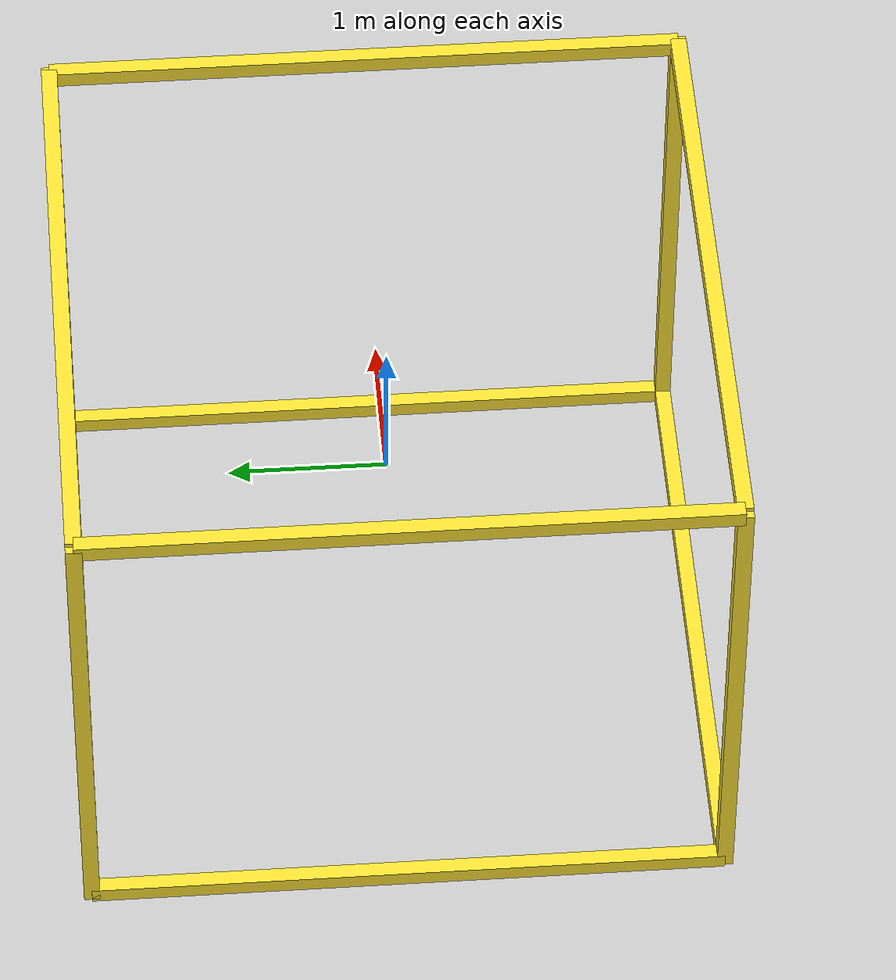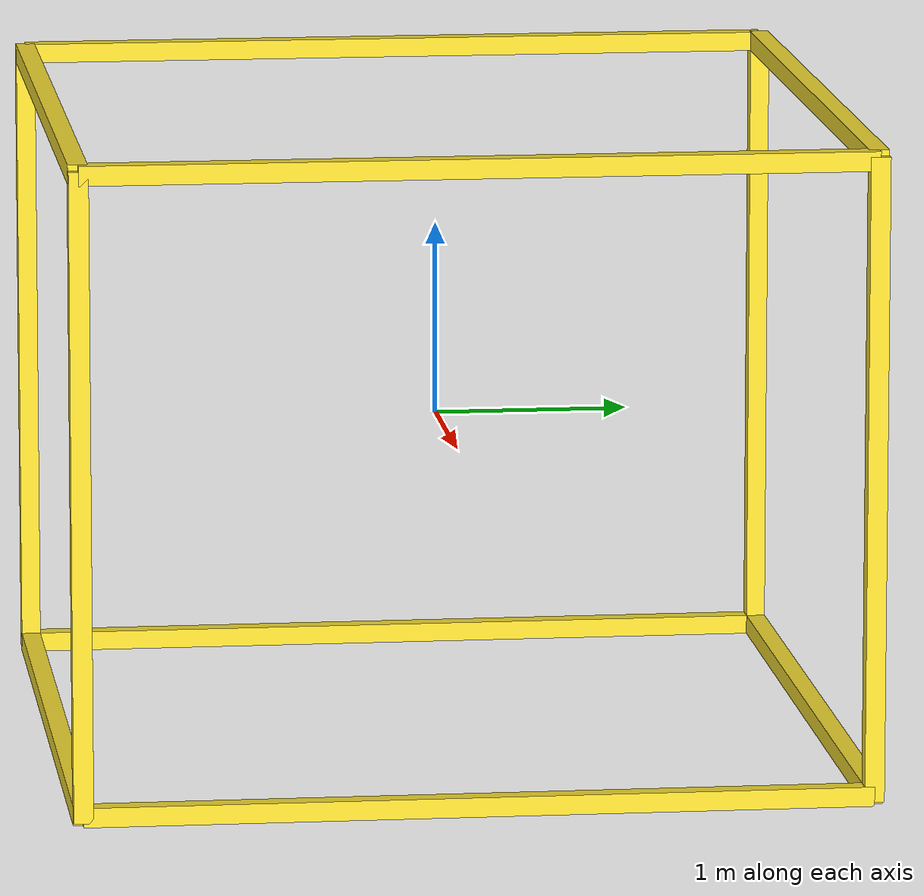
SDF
<?xml version='1.0'?>
<sdf version='1.7'>
  <model name='GoalBox'>
    <link name='link_1'>
      <inertial>
        <mass>1</mass>
        <inertia>
          <ixx>0.166667</ixx>
          <ixy>0</ixy>
          <ixz>0</ixz>
          <iyy>0.166667</iyy>
          <iyz>0</iyz>
          <izz>0.166667</izz>
        </inertia>
        <pose>0 0 0 0 -0 0</pose>
      </inertial>
      <pose>0 -2 -1.62333 0 -0 0</pose>
      <gravity>1</gravity>
      <self_collide>0</self_collide>
      <kinematic>0</kinematic>
      <enable_wind>0</enable_wind>
      <visual name='visual'>
        <pose>0 0 0 0 -0 0</pose>
        <geometry>
          <box>
            <size>4 0.1 0.1</size>
          </box>
        </geometry>
        <material>
          <lighting>1</lighting>
          <script>
            <uri>file://media/materials/scripts/gazebo.material</uri>
            <name>Gazebo/Grey</name>
          </script>
          <shader type='pixel'>
            <normal_map>__default__</normal_map>
          </shader>
          <ambient>0.3 0.3 0.3 1</ambient>
          <diffuse>1 0.9 0.2 1</diffuse>
          <specular>0.01 0.01 0.01 1</specular>
          <emissive>0 0 0 1</emissive>
        </material>
        <transparency>0</transparency>
        <cast_shadows>1</cast_shadows>
      </visual>
    </link>
    <link name='link_1_clone'>
      <inertial>
        <mass>1</mass>
        <inertia>
          <ixx>0.166667</ixx>
          <ixy>0</ixy>
          <ixz>0</ixz>
          <iyy>0.166667</iyy>
          <iyz>0</iyz>
          <izz>0.166667</izz>
        </inertia>
        <pose>0 0 0 0 -0 0</pose>
      </inertial>
      <pose>0 2 -1.62333 0 -0 0</pose>
      <gravity>1</gravity>
      <self_collide>0</self_collide>
      <kinematic>0</kinematic>
      <enable_wind>0</enable_wind>
      <visual name='visual'>
        <pose>0 0 0 0 -0 0</pose>
        <geometry>
          <box>
            <size>4 0.1 0.1</size>
          </box>
        </geometry>
        <material>
          <lighting>1</lighting>
          <script>
            <uri>file://media/materials/scripts/gazebo.material</uri>
            <name>Gazebo/Grey</name>
          </script>
          <shader type='pixel'>
            <normal_map>__default__</normal_map>
          </shader>
          <ambient>0.3 0.3 0.3 1</ambient>
          <diffuse>1 0.9 0.2 1</diffuse>
          <specular>0.01 0.01 0.01 1</specular>
          <emissive>0 0 0 1</emissive>
        </material>
        <transparency>0</transparency>
        <cast_shadows>1</cast_shadows>
      </visual>
    </link>
    <link name='link_1_clone_clone'>
      <inertial>
        <mass>1</mass>
        <inertia>
          <ixx>0.166667</ixx>
          <ixy>0</ixy>
          <ixz>0</ixz>
          <iyy>0.166667</iyy>
          <iyz>0</iyz>
          <izz>0.166667</izz>
        </inertia>
        <pose>0 0 0 0 -0 0</pose>
      </inertial>
      <pose>-2 0 -1.62333 0 -0 0</pose>
      <gravity>1</gravity>
      <self_collide>0</self_collide>
      <kinematic>0</kinematic>
      <enable_wind>0</enable_wind>
      <visual name='visual'>
        <pose>0 0 0 0 -0 0</pose>
        <geometry>
          <box>
            <size>0.1 4 0.1</size>
          </box>
        </geometry>
        <material>
          <lighting>1</lighting>
          <script>
            <uri>file://media/materials/scripts/gazebo.material</uri>
            <name>Gazebo/Grey</name>
          </script>
          <shader type='pixel'>
            <normal_map>__default__</normal_map>
          </shader>
          <ambient>0.3 0.3 0.3 1</ambient>
          <diffuse>1 0.9 0.2 1</diffuse>
          <specular>0.01 0.01 0.01 1</specular>
          <emissive>0 0 0 1</emissive>
        </material>
        <transparency>0</transparency>
        <cast_shadows>1</cast_shadows>
      </visual>
    </link>
    <link name='link_1_clone_clone_0'>
      <inertial>
        <mass>1</mass>
        <inertia>
          <ixx>0.166667</ixx>
          <ixy>0</ixy>
          <ixz>0</ixz>
          <iyy>0.166667</iyy>
          <iyz>0</iyz>
          <izz>0.166667</izz>
        </inertia>
        <pose>0 0 0 0 -0 0</pose>
      </inertial>
      <pose>0 -2 1.62667 0 -0 0</pose>
      <gravity>1</gravity>
      <self_collide>0</self_collide>
      <kinematic>0</kinematic>
      <enable_wind>0</enable_wind>
      <visual name='visual'>
        <pose>0 0 0 0 -0 0</pose>
        <geometry>
          <box>
            <size>4 0.1 0.1</size>
          </box>
        </geometry>
        <material>
          <lighting>1</lighting>
          <script>
            <uri>file://media/materials/scripts/gazebo.material</uri>
            <name>Gazebo/Grey</name>
          </script>
          <shader type='pixel'>
            <normal_map>__default__</normal_map>
          </shader>
          <ambient>0.3 0.3 0.3 1</ambient>
          <diffuse>1 0.9 0.2 1</diffuse>
          <specular>0.01 0.01 0.01 1</specular>
          <emissive>0 0 0 1</emissive>
        </material>
        <transparency>0</transparency>
        <cast_shadows>1</cast_shadows>
      </visual>
    </link>
    <link name='link_1_clone_clone_0_clone'>
      <inertial>
        <mass>1</mass>
        <inertia>
          <ixx>0.166667</ixx>
          <ixy>0</ixy>
          <ixz>0</ixz>
          <iyy>0.166667</iyy>
          <iyz>0</iyz>
          <izz>0.166667</izz>
        </inertia>
        <pose>0 0 0 0 -0 0</pose>
      </inertial>
      <pose>0 2 1.62667 0 -0 0</pose>
      <gravity>1</gravity>
      <self_collide>0</self_collide>
      <kinematic>0</kinematic>
      <enable_wind>0</enable_wind>
      <visual name='visual'>
        <pose>0 0 0 0 -0 0</pose>
        <geometry>
          <box>
            <size>4 0.1 0.1</size>
          </box>
        </geometry>
        <material>
          <lighting>1</lighting>
          <script>
            <uri>file://media/materials/scripts/gazebo.material</uri>
            <name>Gazebo/Grey</name>
          </script>
          <shader type='pixel'>
            <normal_map>__default__</normal_map>
          </shader>
          <ambient>0.3 0.3 0.3 1</ambient>
          <diffuse>1 0.9 0.2 1</diffuse>
          <specular>0.01 0.01 0.01 1</specular>
          <emissive>0 0 0 1</emissive>
        </material>
        <transparency>0</transparency>
        <cast_shadows>1</cast_shadows>
      </visual>
    </link>
    <link name='link_1_clone_clone_clone'>
      <inertial>
        <mass>1</mass>
        <inertia>
          <ixx>0.166667</ixx>
          <ixy>0</ixy>
          <ixz>0</ixz>
          <iyy>0.166667</iyy>
          <iyz>0</iyz>
          <izz>0.166667</izz>
        </inertia>
        <pose>0 0 0 0 -0 0</pose>
      </inertial>
      <pose>2 0 -1.62333 0 -0 0</pose>
      <gravity>1</gravity>
      <self_collide>0</self_collide>
      <kinematic>0</kinematic>
      <enable_wind>0</enable_wind>
      <visual name='visual'>
        <pose>0 0 0 0 -0 0</pose>
        <geometry>
          <box>
            <size>0.1 4 0.1</size>
          </box>
        </geometry>
        <material>
          <lighting>1</lighting>
          <script>
            <uri>file://media/materials/scripts/gazebo.material</uri>
            <name>Gazebo/Grey</name>
          </script>
          <shader type='pixel'>
            <normal_map>__default__</normal_map>
          </shader>
          <ambient>0.3 0.3 0.3 1</ambient>
          <diffuse>1 0.9 0.2 1</diffuse>
          <specular>0.01 0.01 0.01 1</specular>
          <emissive>0 0 0 1</emissive>
        </material>
        <transparency>0</transparency>
        <cast_shadows>1</cast_shadows>
      </visual>
    </link>
    <link name='link_1_clone_clone_clone_0'>
      <inertial>
        <mass>1</mass>
        <inertia>
          <ixx>0.166667</ixx>
          <ixy>0</ixy>
          <ixz>0</ixz>
          <iyy>0.166667</iyy>
          <iyz>0</iyz>
          <izz>0.166667</izz>
        </inertia>
        <pose>0 0 0 0 -0 0</pose>
      </inertial>
      <pose>2 0 1.62667 0 -0 0</pose>
      <gravity>1</gravity>
      <self_collide>0</self_collide>
      <kinematic>0</kinematic>
      <enable_wind>0</enable_wind>
      <visual name='visual'>
        <pose>0 0 0 0 -0 0</pose>
        <geometry>
          <box>
            <size>0.1 4 0.1</size>
          </box>
        </geometry>
        <material>
          <lighting>1</lighting>
          <script>
            <uri>file://media/materials/scripts/gazebo.material</uri>
            <name>Gazebo/Grey</name>
          </script>
          <shader type='pixel'>
            <normal_map>__default__</normal_map>
          </shader>
          <ambient>0.3 0.3 0.3 1</ambient>
          <diffuse>1 0.9 0.2 1</diffuse>
          <specular>0.01 0.01 0.01 1</specular>
          <emissive>0 0 0 1</emissive>
        </material>
        <transparency>0</transparency>
        <cast_shadows>1</cast_shadows>
      </visual>
    </link>
    <link name='link_1_clone_clone_clone_0_clone'>
      <inertial>
        <mass>1</mass>
        <inertia>
          <ixx>0.166667</ixx>
          <ixy>0</ixy>
          <ixz>0</ixz>
          <iyy>0.166667</iyy>
          <iyz>0</iyz>
          <izz>0.166667</izz>
        </inertia>
        <pose>0 0 0 0 -0 0</pose>
      </inertial>
      <pose>-2 0 1.62667 0 -0 0</pose>
      <gravity>1</gravity>
      <self_collide>0</self_collide>
      <kinematic>0</kinematic>
      <enable_wind>0</enable_wind>
      <visual name='visual'>
        <pose>0 0 0 0 -0 0</pose>
        <geometry>
          <box>
            <size>0.1 4 0.1</size>
          </box>
        </geometry>
        <material>
          <lighting>1</lighting>
          <script>
            <uri>file://media/materials/scripts/gazebo.material</uri>
            <name>Gazebo/Grey</name>
          </script>
          <shader type='pixel'>
            <normal_map>__default__</normal_map>
          </shader>
          <ambient>0.3 0.3 0.3 1</ambient>
          <diffuse>1 0.9 0.2 1</diffuse>
          <specular>0.01 0.01 0.01 1</specular>
          <emissive>0 0 0 1</emissive>
        </material>
        <transparency>0</transparency>
        <cast_shadows>1</cast_shadows>
      </visual>
    </link>
    <link name='link_1_clone_clone_clone_1'>
      <inertial>
        <mass>1</mass>
        <inertia>
          <ixx>0.166667</ixx>
          <ixy>0</ixy>
          <ixz>0</ixz>
          <iyy>0.166667</iyy>
          <iyz>0</iyz>
          <izz>0.166667</izz>
        </inertia>
        <pose>0 0 0 0 -0 0</pose>
      </inertial>
      <pose>-2 2 -0.003333 0 -0 0</pose>
      <gravity>1</gravity>
      <self_collide>0</self_collide>
      <kinematic>0</kinematic>
      <enable_wind>0</enable_wind>
      <visual name='visual'>
        <pose>0 0 0 0 -0 0</pose>
        <geometry>
          <box>
            <size>0.1 0.1 3.3</size>
          </box>
        </geometry>
        <material>
          <lighting>1</lighting>
          <script>
            <uri>file://media/materials/scripts/gazebo.material</uri>
            <name>Gazebo/Grey</name>
          </script>
          <shader type='pixel'>
            <normal_map>__default__</normal_map>
          </shader>
          <ambient>0.3 0.3 0.3 1</ambient>
          <diffuse>1 0.9 0.2 1</diffuse>
          <specular>0.01 0.01 0.01 1</specular>
          <emissive>0 0 0 1</emissive>
        </material>
        <transparency>0</transparency>
        <cast_shadows>1</cast_shadows>
      </visual>
    </link>
    <link name='link_1_clone_clone_clone_1_clone'>
      <inertial>
        <mass>1</mass>
        <inertia>
          <ixx>0.166667</ixx>
          <ixy>0</ixy>
          <ixz>0</ixz>
          <iyy>0.166667</iyy>
          <iyz>0</iyz>
          <izz>0.166667</izz>
        </inertia>
        <pose>0 0 0 0 -0 0</pose>
      </inertial>
      <pose>-2 -2 -0.003333 0 -0 0</pose>
      <gravity>1</gravity>
      <self_collide>0</self_collide>
      <kinematic>0</kinematic>
      <enable_wind>0</enable_wind>
      <visual name='visual'>
        <pose>0 0 0 0 -0 0</pose>
        <geometry>
          <box>
            <size>0.1 0.1 3.3</size>
          </box>
        </geometry>
        <material>
          <lighting>1</lighting>
          <script>
            <uri>file://media/materials/scripts/gazebo.material</uri>
            <name>Gazebo/Grey</name>
          </script>
          <shader type='pixel'>
            <normal_map>__default__</normal_map>
          </shader>
          <ambient>0.3 0.3 0.3 1</ambient>
          <diffuse>1 0.9 0.2 1</diffuse>
          <specular>0.01 0.01 0.01 1</specular>
          <emissive>0 0 0 1</emissive>
        </material>
        <transparency>0</transparency>
        <cast_shadows>1</cast_shadows>
      </visual>
    </link>
    <link name='link_1_clone_clone_clone_1_clone_0'>
      <inertial>
        <mass>1</mass>
        <inertia>
          <ixx>0.166667</ixx>
          <ixy>0</ixy>
          <ixz>0</ixz>
          <iyy>0.166667</iyy>
          <iyz>0</iyz>
          <izz>0.166667</izz>
        </inertia>
        <pose>0 0 0 0 -0 0</pose>
      </inertial>
      <pose>2 -2 -0.003333 0 -0 0</pose>
      <gravity>1</gravity>
      <self_collide>0</self_collide>
      <kinematic>0</kinematic>
      <enable_wind>0</enable_wind>
      <visual name='visual'>
        <pose>0 0 0 0 -0 0</pose>
        <geometry>
          <box>
            <size>0.1 0.1 3.3</size>
          </box>
        </geometry>
        <material>
          <lighting>1</lighting>
          <script>
            <uri>file://media/materials/scripts/gazebo.material</uri>
            <name>Gazebo/Grey</name>
          </script>
          <shader type='pixel'>
            <normal_map>__default__</normal_map>
          </shader>
          <ambient>0.3 0.3 0.3 1</ambient>
          <diffuse>1 0.9 0.2 1</diffuse>
          <specular>0.01 0.01 0.01 1</specular>
          <emissive>0 0 0 1</emissive>
        </material>
        <transparency>0</transparency>
        <cast_shadows>1</cast_shadows>
      </visual>
    </link>
    <link name='link_1_clone_clone_clone_1_clone_0_clone'>
      <inertial>
        <mass>1</mass>
        <inertia>
          <ixx>0.166667</ixx>
          <ixy>0</ixy>
          <ixz>0</ixz>
          <iyy>0.166667</iyy>
          <iyz>0</iyz>
          <izz>0.166667</izz>
        </inertia>
        <pose>0 0 0 0 -0 0</pose>
      </inertial>
      <pose>2 2 -0.003333 0 -0 0</pose>
      <gravity>1</gravity>
      <self_collide>0</self_collide>
      <kinematic>0</kinematic>
      <enable_wind>0</enable_wind>
      <visual name='visual'>
        <pose>0 0 0 0 -0 0</pose>
        <geometry>
          <box>
            <size>0.1 0.1 3.3</size>
          </box>
        </geometry>
        <material>
          <lighting>1</lighting>
          <script>
            <uri>file://media/materials/scripts/gazebo.material</uri>
            <name>Gazebo/Grey</name>
          </script>
          <shader type='pixel'>
            <normal_map>__default__</normal_map>
          </shader>
          <ambient>0.3 0.3 0.3 1</ambient>
          <diffuse>1 0.9 0.2 1</diffuse>
          <specular>0.01 0.01 0.01 1</specular>
          <emissive>0 0 0 1</emissive>
        </material>
        <transparency>0</transparency>
        <cast_shadows>1</cast_shadows>
      </visual>
    </link>
    <static>0</static>
    <allow_auto_disable>1</allow_auto_disable>
  </model>
</sdf>
